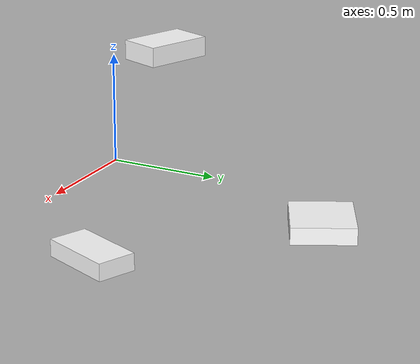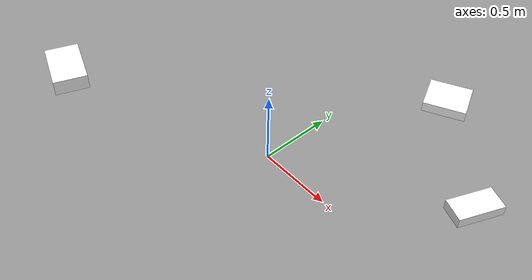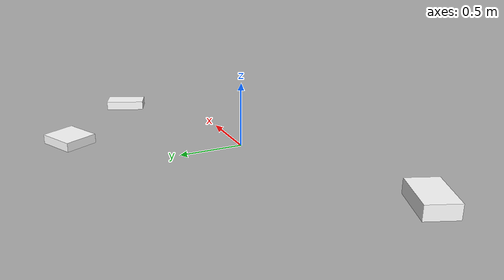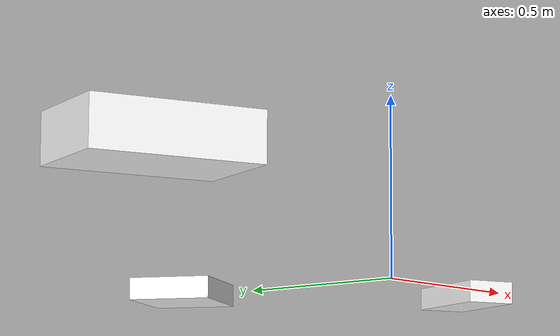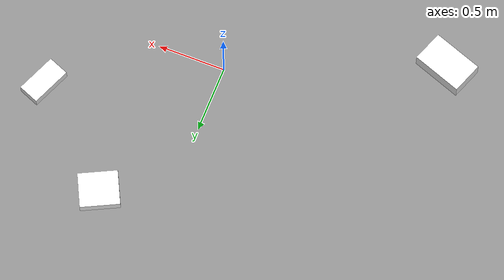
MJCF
<mujoco>
  <compiler angle="radian" />

  <visual>
    <headlight ambient="0.1 0.1 0.1" />
  </visual>

  <asset>
    <material name="white" rgba="1 1 1 1" />
    <material name="goal" rgba="0 0 0 0.3" />
  </asset>

  <option gravity="0 0 -9.8" />
  <worldbody>
    <body name="obj1" pos="1.1609277717764082 0.5957068546926183 0.08489235136276457" quat="-0.6938597988765497 0.1362298774881741 0.6938597988503938 0.1362298774933104">
      <joint type="free" />
      <inertial pos="0 0 0" mass="1" diaginertia="0.01 0.01 0.01" />
      <geom type="box" size="0.035 0.155 0.08" material="white" />

    </body>

    <body name="obj2" pos="0.47031155934105484 1.2272188207582364 0.08489235136745046" quat="0.8494913641243402 9.467807375954333e-18 -1.0052635306173794e-17 -0.5276025230020868">
      <joint type="free" />
      <inertial pos="0 0 0" mass="1" diaginertia="0.01 0.01 0.01" />
      <geom type="box" size="0.13 0.145 0.035" material="white" />

    </body>

    <body name="obj3" pos="-1.5032448138690364 -0.5801843406402204 0.10489235136745055" quat="-0.12610653555750317 -0.6957708974150073 0.12610653555750348 -0.6957708974150076">
      <joint type="free" />
      <inertial pos="0 0 0" mass="1" diaginertia="0.01 0.01 0.01" />
      <geom type="box" size="0.055 0.12 0.19" material="white" />

    </body>

  </worldbody>
</mujoco>
